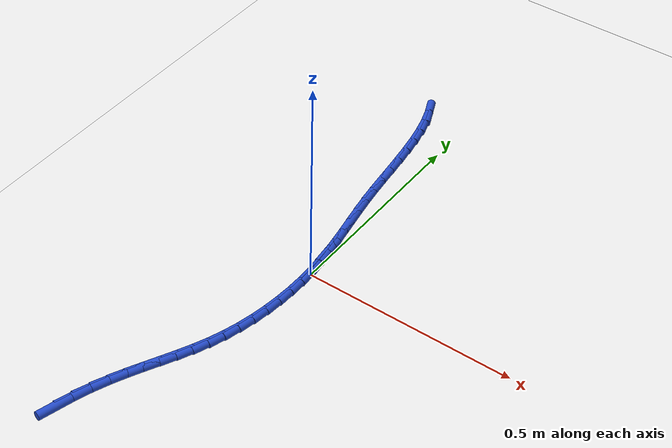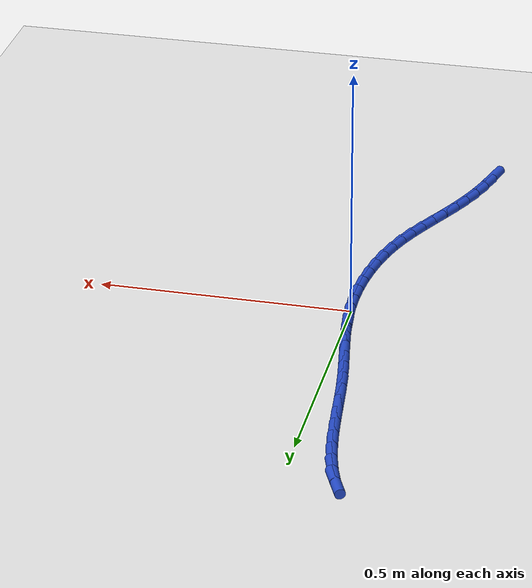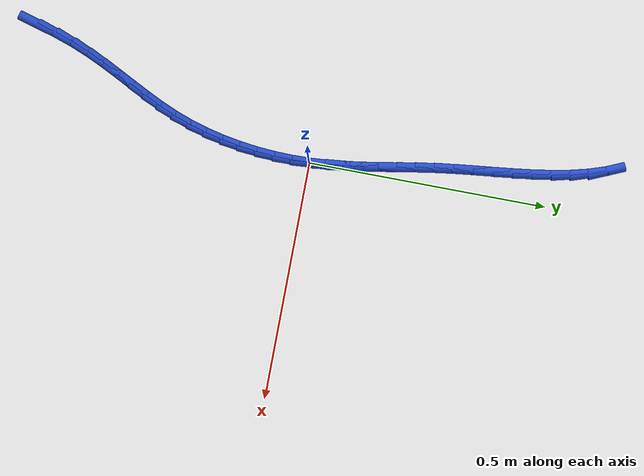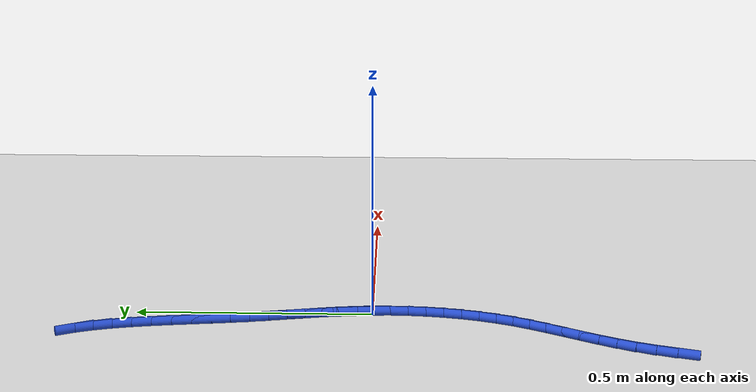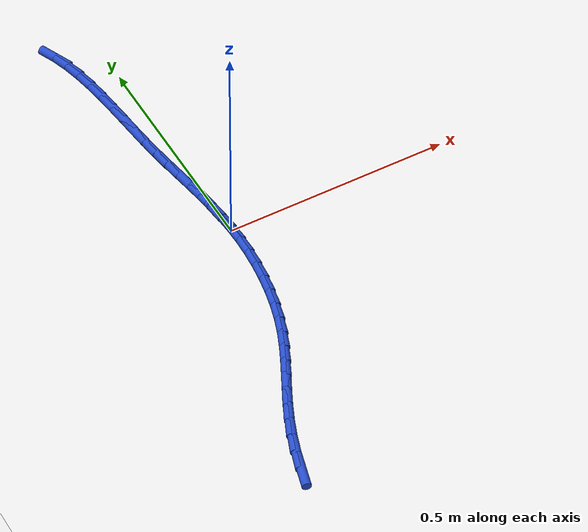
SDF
<sdf version="1.6">
 <world name="default">
  <model name="ground_plane">
   <static>1</static>
   <link name="link">
    <collision name="collision">
     <geometry><plane><normal>0 0 1</normal><size>100 100</size></plane></geometry>
     <surface><friction><ode><mu>100</mu><mu2>50</mu2></ode></friction></surface>
    </collision>
    <visual name="visual">
     <cast_shadows>0</cast_shadows>
     <geometry><plane><normal>0 0 1</normal><size>100 100</size></plane></geometry>
     <material>
      <script><uri>file://media/materials/scripts/gazebo.material</uri><name>Gazebo/WhiteGlow</name></script>
     </material>
    </visual>
   </link>
  </model>
  <model name="line">
   <link name="link_0">
    <pose>-6.938893903907228e-18 -6.938893903907228e-18 0.01 0 1.57 -1.4983998689874092</pose>
    <collision name="collision">
     <geometry><cylinder><radius>0.01</radius><length>0.08</length></cylinder></geometry>
    </collision>
    <visual name="visual">
     <material>
      <script><name>Gazebo/Blue</name><uri>file://media/materials/scripts/gazebo.material</uri></script>
     </material>
     <geometry><cylinder><radius>0.01</radius><length>0.08</length></cylinder></geometry>
    </visual>
   </link>
   <link name="link_1">
    <pose>-0.002663180937082676 0.036721776100140734 0.01 0 1.57 -1.4579496935638216</pose>
    <collision name="collision">
     <geometry><cylinder><radius>0.01</radius><length>0.08</length></cylinder></geometry>
    </collision>
    <visual name="visual">
     <material>
      <script><name>Gazebo/Blue</name><uri>file://media/materials/scripts/gazebo.material</uri></script>
     </material>
     <geometry><cylinder><radius>0.01</radius><length>0.08</length></cylinder></geometry>
    </visual>
   </link>
   <link name="link_2">
    <pose>-0.006778611962420478 0.07303608100309464 0.01 0 1.57 -1.4274380562315656</pose>
    <collision name="collision">
     <geometry><cylinder><radius>0.01</radius><length>0.08</length></cylinder></geometry>
    </collision>
    <visual name="visual">
     <material>
      <script><name>Gazebo/Blue</name><uri>file://media/materials/scripts/gazebo.material</uri></script>
     </material>
     <geometry><cylinder><radius>0.01</radius><length>0.08</length></cylinder></geometry>
    </visual>
   </link>
   <link name="link_3">
    <pose>-0.011997254429461144 0.10918916024557128 0.01 0 1.57 -1.4074435517171158</pose>
    <collision name="collision">
     <geometry><cylinder><radius>0.01</radius><length>0.08</length></cylinder></geometry>
    </collision>
    <visual name="visual">
     <material>
      <script><name>Gazebo/Blue</name><uri>file://media/materials/scripts/gazebo.material</uri></script>
     </material>
     <geometry><cylinder><radius>0.01</radius><length>0.08</length></cylinder></geometry>
    </visual>
   </link>
   <link name="link_4">
    <pose>-0.01797006969165242 0.1454272593642804 0.01 0 1.57 -1.3981261967314953</pose>
    <collision name="collision">
     <geometry><cylinder><radius>0.01</radius><length>0.08</length></cylinder></geometry>
    </collision>
    <visual name="visual">
     <material>
      <script><name>Gazebo/Blue</name><uri>file://media/materials/scripts/gazebo.material</uri></script>
     </material>
     <geometry><cylinder><radius>0.01</radius><length>0.08</length></cylinder></geometry>
    </visual>
   </link>
   <link name="link_5">
    <pose>-0.024348019102442036 0.18199662389593138 0.01 0 1.57 -1.3992923194561482</pose>
    <collision name="collision">
     <geometry><cylinder><radius>0.01</radius><length>0.08</length></cylinder></geometry>
    </collision>
    <visual name="visual">
     <material>
      <script><name>Gazebo/Blue</name><uri>file://media/materials/scripts/gazebo.material</uri></script>
     </material>
     <geometry><cylinder><radius>0.01</radius><length>0.08</length></cylinder></geometry>
    </visual>
   </link>
   <link name="link_6">
    <pose>-0.0307820640152777 0.21914349937723393 0.01 0 1.57 -1.4104518432613529</pose>
    <collision name="collision">
     <geometry><cylinder><radius>0.01</radius><length>0.08</length></cylinder></geometry>
    </collision>
    <visual name="visual">
     <material>
      <script><name>Gazebo/Blue</name><uri>file://media/materials/scripts/gazebo.material</uri></script>
     </material>
     <geometry><cylinder><radius>0.01</radius><length>0.08</length></cylinder></geometry>
    </visual>
   </link>
   <link name="link_7">
    <pose>-0.03692316578360721 0.2571141313448977 0.01 0 1.57 -1.4306825054110668</pose>
    <collision name="collision">
     <geometry><cylinder><radius>0.01</radius><length>0.08</length></cylinder></geometry>
    </collision>
    <visual name="visual">
     <material>
      <script><name>Gazebo/Blue</name><uri>file://media/materials/scripts/gazebo.material</uri></script>
     </material>
     <geometry><cylinder><radius>0.01</radius><length>0.08</length></cylinder></geometry>
    </visual>
   </link>
   <link name="link_8">
    <pose>-0.0424285925186946 0.29614919685629043 0.01 0 1.57 -1.4508441233355336</pose>
    <collision name="collision">
     <geometry><cylinder><radius>0.01</radius><length>0.08</length></cylinder></geometry>
    </collision>
    <visual name="visual">
     <material>
      <script><name>Gazebo/Blue</name><uri>file://media/materials/scripts/gazebo.material</uri></script>
     </material>
     <geometry><cylinder><radius>0.01</radius><length>0.08</length></cylinder></geometry>
    </visual>
   </link>
   <link name="link_9">
    <pose>-0.04725858529024402 0.33622186647664826 0.01 0 1.57 -1.4595823480422738</pose>
    <collision name="collision">
     <geometry><cylinder><radius>0.01</radius><length>0.08</length></cylinder></geometry>
    </collision>
    <visual name="visual">
     <material>
      <script><name>Gazebo/Blue</name><uri>file://media/materials/scripts/gazebo.material</uri></script>
     </material>
     <geometry><cylinder><radius>0.01</radius><length>0.08</length></cylinder></geometry>
    </visual>
   </link>
   <link name="link_10">
    <pose>-0.051804100409577156 0.3769250156980553 0.01 0 1.57 -1.45674258455282</pose>
    <collision name="collision">
     <geometry><cylinder><radius>0.01</radius><length>0.08</length></cylinder></geometry>
    </collision>
    <visual name="visual">
     <material>
      <script><name>Gazebo/Blue</name><uri>file://media/materials/scripts/gazebo.material</uri></script>
     </material>
     <geometry><cylinder><radius>0.01</radius><length>0.08</length></cylinder></geometry>
    </visual>
   </link>
   <link name="link_11">
    <pose>-0.056488944772962214 0.41782251496611034 0.01 0 1.57 -1.4424227474310363</pose>
    <collision name="collision">
     <geometry><cylinder><radius>0.01</radius><length>0.08</length></cylinder></geometry>
    </collision>
    <visual name="visual">
     <material>
      <script><name>Gazebo/Blue</name><uri>file://media/materials/scripts/gazebo.material</uri></script>
     </material>
     <geometry><cylinder><radius>0.01</radius><length>0.08</length></cylinder></geometry>
    </visual>
   </link>
   <link name="link_12">
    <pose>-0.06173692527666738 0.45847823472641197 0.01 0 1.57 -1.4160830722713165</pose>
    <collision name="collision">
     <geometry><cylinder><radius>0.01</radius><length>0.08</length></cylinder></geometry>
    </collision>
    <visual name="visual">
     <material>
      <script><name>Gazebo/Blue</name><uri>file://media/materials/scripts/gazebo.material</uri></script>
     </material>
     <geometry><cylinder><radius>0.01</radius><length>0.08</length></cylinder></geometry>
    </visual>
   </link>
   <link name="link_13">
    <pose>-0.06797184881696085 0.4984560454245588 0.01 0 1.57 -1.3765468768446876</pose>
    <collision name="collision">
     <geometry><cylinder><radius>0.01</radius><length>0.08</length></cylinder></geometry>
    </collision>
    <visual name="visual">
     <material>
      <script><name>Gazebo/Blue</name><uri>file://media/materials/scripts/gazebo.material</uri></script>
     </material>
     <geometry><cylinder><radius>0.01</radius><length>0.08</length></cylinder></geometry>
    </visual>
   </link>
   <link name="link_14">
    <pose>-0.07561752229011076 0.5373198175061492 0.01 0 1.57 -1.321991691514747</pose>
    <collision name="collision">
     <geometry><cylinder><radius>0.01</radius><length>0.08</length></cylinder></geometry>
    </collision>
    <visual name="visual">
     <material>
      <script><name>Gazebo/Blue</name><uri>file://media/materials/scripts/gazebo.material</uri></script>
     </material>
     <geometry><cylinder><radius>0.01</radius><length>0.08</length></cylinder></geometry>
    </visual>
   </link>
   <link name="link_15">
    <pose>-0.08509775259238536 0.574633421416782 0.01 0 1.57 -1.2499931354912268</pose>
    <collision name="collision">
     <geometry><cylinder><radius>0.01</radius><length>0.08</length></cylinder></geometry>
    </collision>
    <visual name="visual">
     <material>
      <script><name>Gazebo/Blue</name><uri>file://media/materials/scripts/gazebo.material</uri></script>
     </material>
     <geometry><cylinder><radius>0.01</radius><length>0.08</length></cylinder></geometry>
    </visual>
   </link>
   <link name="link_16">
    <pose>-0.0968363466200528 0.6099607276020559 0.01 0 1.57 -1.157751414140631</pose>
    <collision name="collision">
     <geometry><cylinder><radius>0.01</radius><length>0.08</length></cylinder></geometry>
    </collision>
    <visual name="visual">
     <material>
      <script><name>Gazebo/Blue</name><uri>file://media/materials/scripts/gazebo.material</uri></script>
     </material>
     <geometry><cylinder><radius>0.01</radius><length>0.08</length></cylinder></geometry>
    </visual>
   </link>
   <link name="link_203">
    <pose>-0.17968745740350245 -0.6109361984424976 0.01 0 1.57 1.2987106762025231</pose>
    <collision name="collision">
     <geometry><cylinder><radius>0.01</radius><length>0.08</length></cylinder></geometry>
    </collision>
    <visual name="visual">
     <material>
      <script><name>Gazebo/Blue</name><uri>file://media/materials/scripts/gazebo.material</uri></script>
     </material>
     <geometry><cylinder><radius>0.01</radius><length>0.08</length></cylinder></geometry>
    </visual>
   </link>
   <link name="link_204">
    <pose>-0.1681439359747281 -0.5695622869782292 0.01 0 1.57 1.2488666173873282</pose>
    <collision name="collision">
     <geometry><cylinder><radius>0.01</radius><length>0.08</length></cylinder></geometry>
    </collision>
    <visual name="visual">
     <material>
      <script><name>Gazebo/Blue</name><uri>file://media/materials/scripts/gazebo.material</uri></script>
     </material>
     <geometry><cylinder><radius>0.01</radius><length>0.08</length></cylinder></geometry>
    </visual>
   </link>
   <link name="link_205">
    <pose>-0.15506968519189357 -0.5303629452230193 0.01 0 1.57 1.1917616159484725</pose>
    <collision name="collision">
     <geometry><cylinder><radius>0.01</radius><length>0.08</length></cylinder></geometry>
    </collision>
    <visual name="visual">
     <material>
      <script><name>Gazebo/Blue</name><uri>file://media/materials/scripts/gazebo.material</uri></script>
     </material>
     <geometry><cylinder><radius>0.01</radius><length>0.08</length></cylinder></geometry>
    </visual>
   </link>
   <link name="link_206">
    <pose>-0.14039115841345073 -0.4935094361053613 0.01 0 1.57 1.1453008999900847</pose>
    <collision name="collision">
     <geometry><cylinder><radius>0.01</radius><length>0.08</length></cylinder></geometry>
    </collision>
    <visual name="visual">
     <material>
      <script><name>Gazebo/Blue</name><uri>file://media/materials/scripts/gazebo.material</uri></script>
     </material>
     <geometry><cylinder><radius>0.01</radius><length>0.08</length></cylinder></geometry>
    </visual>
   </link>
   <link name="link_207">
    <pose>-0.12454944372148281 -0.458552668431787 0.01 0 1.57 1.1138386539686551</pose>
    <collision name="collision">
     <geometry><cylinder><radius>0.01</radius><length>0.08</length></cylinder></geometry>
    </collision>
    <visual name="visual">
     <material>
      <script><name>Gazebo/Blue</name><uri>file://media/materials/scripts/gazebo.material</uri></script>
     </material>
     <geometry><cylinder><radius>0.01</radius><length>0.08</length></cylinder></geometry>
    </visual>
   </link>
   <link name="link_208">
    <pose>-0.10804122345334122 -0.42497653624315546 0.01 0 1.57 1.0992990063349573</pose>
    <collision name="collision">
     <geometry><cylinder><radius>0.01</radius><length>0.08</length></cylinder></geometry>
    </collision>
    <visual name="visual">
     <material>
      <script><name>Gazebo/Blue</name><uri>file://media/materials/scripts/gazebo.material</uri></script>
     </material>
     <geometry><cylinder><radius>0.01</radius><length>0.08</length></cylinder></geometry>
    </visual>
   </link>
   <link name="link_209">
    <pose>-0.09136317994637641 -0.3922649335803233 0.01 0 1.57 1.1029652197375046</pose>
    <collision name="collision">
     <geometry><cylinder><radius>0.01</radius><length>0.08</length></cylinder></geometry>
    </collision>
    <visual name="visual">
     <material>
      <script><name>Gazebo/Blue</name><uri>file://media/materials/scripts/gazebo.material</uri></script>
     </material>
     <geometry><cylinder><radius>0.01</radius><length>0.08</length></cylinder></geometry>
    </visual>
   </link>
   <link name="link_210">
    <pose>-0.07501199553793908 -0.3599017544841481 0.01 0 1.57 1.1254564766933595</pose>
    <collision name="collision">
     <geometry><cylinder><radius>0.01</radius><length>0.08</length></cylinder></geometry>
    </collision>
    <visual name="visual">
     <material>
      <script><name>Gazebo/Blue</name><uri>file://media/materials/scripts/gazebo.material</uri></script>
     </material>
     <geometry><cylinder><radius>0.01</radius><length>0.08</length></cylinder></geometry>
    </visual>
   </link>
   <link name="link_211">
    <pose>-0.05948435256537995 -0.32737089299548716 0.01 0 1.57 1.1666024604714371</pose>
    <collision name="collision">
     <geometry><cylinder><radius>0.01</radius><length>0.08</length></cylinder></geometry>
    </collision>
    <visual name="visual">
     <material>
      <script><name>Gazebo/Blue</name><uri>file://media/materials/scripts/gazebo.material</uri></script>
     </material>
     <geometry><cylinder><radius>0.01</radius><length>0.08</length></cylinder></geometry>
    </visual>
   </link>
   <link name="link_212">
    <pose>-0.04527693336604946 -0.2941562431551971 0.01 0 1.57 1.224327504451379</pose>
    <collision name="collision">
     <geometry><cylinder><radius>0.01</radius><length>0.08</length></cylinder></geometry>
    </collision>
    <visual name="visual">
     <material>
      <script><name>Gazebo/Blue</name><uri>file://media/materials/scripts/gazebo.material</uri></script>
     </material>
     <geometry><cylinder><radius>0.01</radius><length>0.08</length></cylinder></geometry>
    </visual>
   </link>
   <link name="link_213">
    <pose>-0.03286420962467592 -0.2597750085499892 0.01 0 1.57 1.285624824565838</pose>
    <collision name="collision">
     <geometry><cylinder><radius>0.01</radius><length>0.08</length></cylinder></geometry>
    </collision>
    <visual name="visual">
     <material>
      <script><name>Gazebo/Blue</name><uri>file://media/materials/scripts/gazebo.material</uri></script>
     </material>
     <geometry><cylinder><radius>0.01</radius><length>0.08</length></cylinder></geometry>
    </visual>
   </link>
   <link name="link_214">
    <pose>-0.022429441571863495 -0.22418112560141226 0.01 0 1.57 1.342832751804466</pose>
    <collision name="collision">
     <geometry><cylinder><radius>0.01</radius><length>0.08</length></cylinder></geometry>
    </collision>
    <visual name="visual">
     <material>
      <script><name>Gazebo/Blue</name><uri>file://media/materials/scripts/gazebo.material</uri></script>
     </material>
     <geometry><cylinder><radius>0.01</radius><length>0.08</length></cylinder></geometry>
    </visual>
   </link>
   <link name="link_215">
    <pose>-0.013951045988851154 -0.18763573657430707 0.01 0 1.57 1.3966976948974623</pose>
    <collision name="collision">
     <geometry><cylinder><radius>0.01</radius><length>0.08</length></cylinder></geometry>
    </collision>
    <visual name="visual">
     <material>
      <script><name>Gazebo/Blue</name><uri>file://media/materials/scripts/gazebo.material</uri></script>
     </material>
     <geometry><cylinder><radius>0.01</radius><length>0.08</length></cylinder></geometry>
    </visual>
   </link>
   <link name="link_216">
    <pose>-0.007403175586473311 -0.1504063786040769 0.01 0 1.57 1.4480771520212767</pose>
    <collision name="collision">
     <geometry><cylinder><radius>0.01</radius><length>0.08</length></cylinder></geometry>
    </collision>
    <visual name="visual">
     <material>
      <script><name>Gazebo/Blue</name><uri>file://media/materials/scripts/gazebo.material</uri></script>
     </material>
     <geometry><cylinder><radius>0.01</radius><length>0.08</length></cylinder></geometry>
    </visual>
   </link>
   <link name="link_217">
    <pose>-0.0027599830755648284 -0.11276058882612765 0.01 0 1.57 1.4977847850615034</pose>
    <collision name="collision">
     <geometry><cylinder><radius>0.01</radius><length>0.08</length></cylinder></geometry>
    </collision>
    <visual name="visual">
     <material>
      <script><name>Gazebo/Blue</name><uri>file://media/materials/scripts/gazebo.material</uri></script>
     </material>
     <geometry><cylinder><radius>0.01</radius><length>0.08</length></cylinder></geometry>
    </visual>
   </link>
   <link name="link_218">
    <pose>4.378833039924996e-06 -0.07496590437586248 0.01 0 1.57 1.546611172372105</pose>
    <collision name="collision">
     <geometry><cylinder><radius>0.01</radius><length>0.08</length></cylinder></geometry>
    </collision>
    <visual name="visual">
     <material>
      <script><name>Gazebo/Blue</name><uri>file://media/materials/scripts/gazebo.material</uri></script>
     </material>
     <geometry><cylinder><radius>0.01</radius><length>0.08</length></cylinder></geometry>
    </visual>
   </link>
   <link name="link_219">
    <pose>0.000915757428506395 -0.03728986238868552 0.01 0 1.57 -1.5462434498758306</pose>
    <collision name="collision">
     <geometry><cylinder><radius>0.01</radius><length>0.08</length></cylinder></geometry>
    </collision>
    <visual name="visual">
     <material>
      <script><name>Gazebo/Blue</name><uri>file://media/materials/scripts/gazebo.material</uri></script>
     </material>
     <geometry><cylinder><radius>0.01</radius><length>0.08</length></cylinder></geometry>
    </visual>
   </link>
   <link name="link_220">
    <pose>-1.0408340855860843e-17 4.163336342344337e-17 0.01 0 1.57 -1.4967688573923987</pose>
    <collision name="collision">
     <geometry><cylinder><radius>0.01</radius><length>0.08</length></cylinder></geometry>
    </collision>
    <visual name="visual">
     <material>
      <script><name>Gazebo/Blue</name><uri>file://media/materials/scripts/gazebo.material</uri></script>
     </material>
     <geometry><cylinder><radius>0.01</radius><length>0.08</length></cylinder></geometry>
    </visual>
   </link>
   <link name="link_221">
    <pose>-0.0027170461633137053 0.036636145654787414 0.01 0 1.57 -1.4456660047832892</pose>
    <collision name="collision">
     <geometry><cylinder><radius>0.01</radius><length>0.08</length></cylinder></geometry>
    </collision>
    <visual name="visual">
     <material>
      <script><name>Gazebo/Blue</name><uri>file://media/materials/scripts/gazebo.material</uri></script>
     </material>
     <geometry><cylinder><radius>0.01</radius><length>0.08</length></cylinder></geometry>
    </visual>
   </link>
   <link name="link_222">
    <pose>-0.007209533772269511 0.07235103744027603 0.01 0 1.57 -1.471477602784242</pose>
    <collision name="collision">
     <geometry><cylinder><radius>0.01</radius><length>0.08</length></cylinder></geometry>
    </collision>
    <visual name="visual">
     <material>
      <script><name>Gazebo/Blue</name><uri>file://media/materials/scripts/gazebo.material</uri></script>
     </material>
     <geometry><cylinder><radius>0.01</radius><length>0.08</length></cylinder></geometry>
    </visual>
   </link>
  </model>
 </world>
</sdf>
